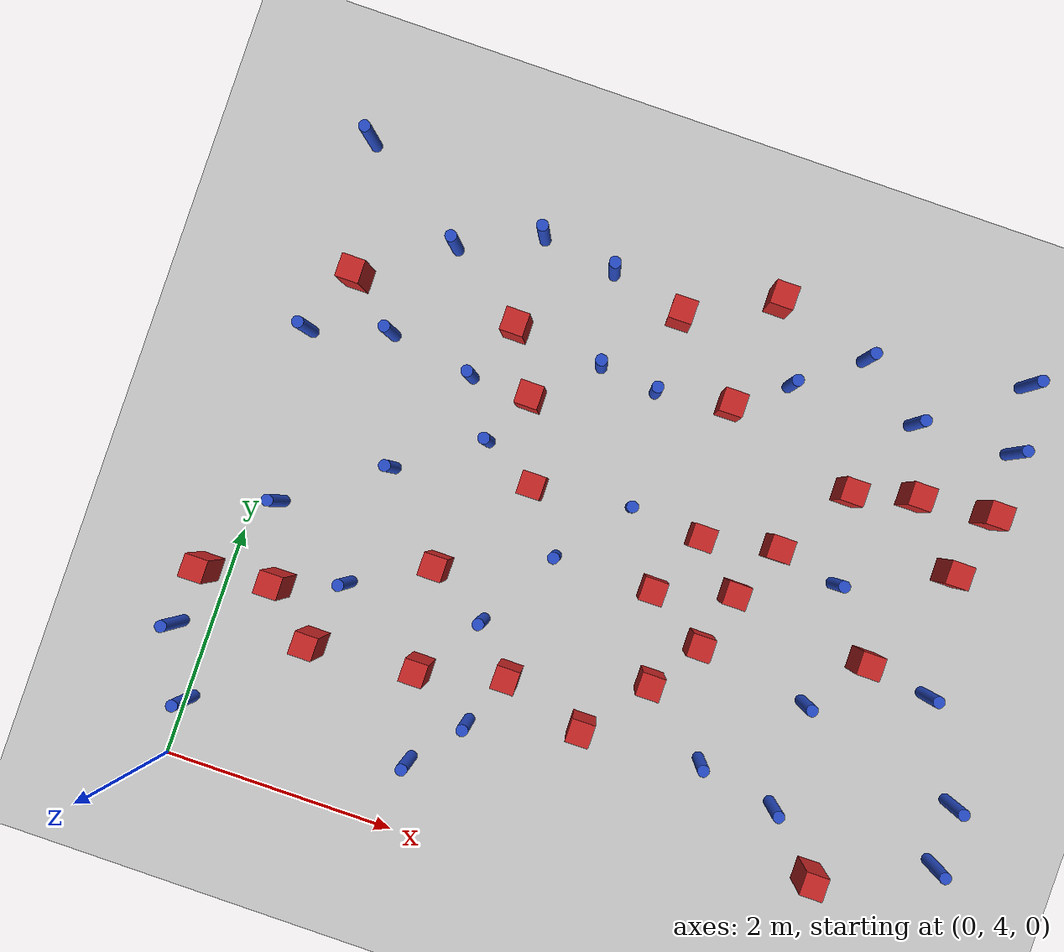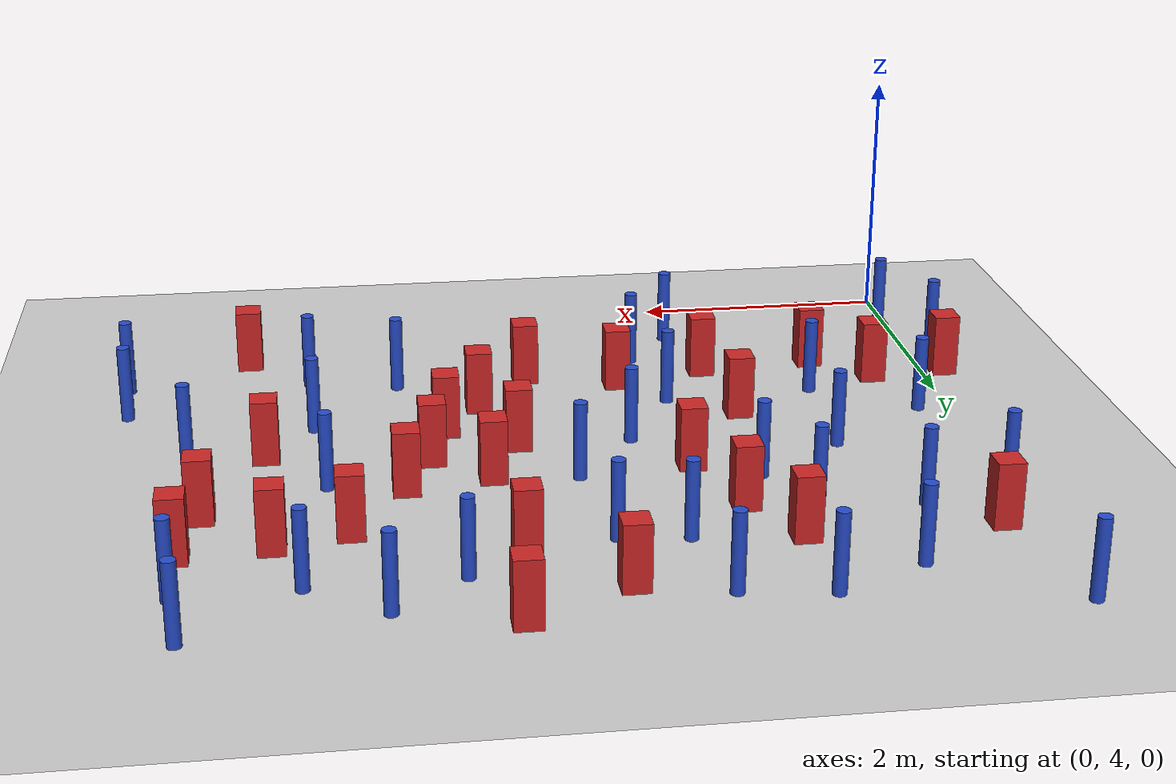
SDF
<sdf version="1.6">
 <world name="default">
  <model name="ground_plane">
   <static>1</static>
   <link name="link">
    <collision name="collision">
     <geometry><plane><normal>0 0 1</normal><size>100 100</size></plane></geometry>
     <surface><friction><ode><mu>100</mu><mu2>50</mu2></ode></friction></surface>
    </collision>
    <visual name="visual">
     <cast_shadows>0</cast_shadows>
     <geometry><plane><normal>0 0 1</normal><size>100 100</size></plane></geometry>
     <material>
      <ambient>1.0 1.0 1.0 1.0</ambient>
      <diffuse>0.8 0.8 0.8 1.0</diffuse>
      <specular>0.01 0.01 0.01 1.000000</specular>
     </material>
    </visual>
   </link>
  </model>
  <model name="pole_obstacle1">
   <static>true</static>
   <pose>0.675258430934 7.98045626126 2.88873142074e-08 -9.90536690208e-09 4.6021994898e-07 -1.20965994966e-07</pose>
   <link name="link">
    <pose>0 0 0.3 0 -0 0</pose>
    <inertial>
     <mass>1</mass>
     <inertia><ixx>0.145833</ixx><ixy>0</ixy><ixz>0</ixz><iyy>0.145833</iyy><iyz>0</iyz><izz>0.125</izz></inertia>
    </inertial>
    <collision name="collision">
     <geometry><cylinder><radius>0.05</radius><length>.6</length></cylinder></geometry>
    </collision>
    <visual name="visual">
     <geometry><cylinder><radius>0.05</radius><length>.6</length></cylinder></geometry>
     <material>
      <script><name>Gazebo/Blue</name><uri>file://media/materials/scripts/gazebo.material</uri></script>
     </material>
    </visual>
   </link>
  </model>
  <model name="pole_obstacle2">
   <static>true</static>
   <pose>6.3781744433 5.77590479522 2.88873142074e-08 -9.90536690842e-09 4.60219948965e-07 -1.20965994976e-07</pose>
   <link name="link">
    <pose>0 0 0.3 0 -0 0</pose>
    <inertial>
     <mass>1</mass>
     <inertia><ixx>0.145833</ixx><ixy>0</ixy><ixz>0</ixz><iyy>0.145833</iyy><iyz>0</iyz><izz>0.125</izz></inertia>
    </inertial>
    <collision name="collision">
     <geometry><cylinder><radius>0.05</radius><length>.6</length></cylinder></geometry>
    </collision>
    <visual name="visual">
     <geometry><cylinder><radius>0.05</radius><length>.6</length></cylinder></geometry>
     <material>
      <script><name>Gazebo/Blue</name><uri>file://media/materials/scripts/gazebo.material</uri></script>
     </material>
    </visual>
   </link>
  </model>
  <model name="pole_obstacle14">
   <static>true</static>
   <pose>4.49745571173 9.06635080468 2.88873142074e-08 -9.9053668967e-09 4.60219948993e-07 -1.20965994957e-07</pose>
   <link name="link">
    <pose>0 0 0.3 0 -0 0</pose>
    <inertial>
     <mass>1</mass>
     <inertia><ixx>0.145833</ixx><ixy>0</ixy><ixz>0</ixz><iyy>0.145833</iyy><iyz>0</iyz><izz>0.125</izz></inertia>
    </inertial>
    <collision name="collision">
     <geometry><cylinder><radius>0.05</radius><length>.6</length></cylinder></geometry>
    </collision>
    <visual name="visual">
     <geometry><cylinder><radius>0.05</radius><length>.6</length></cylinder></geometry>
     <material>
      <script><name>Gazebo/Blue</name><uri>file://media/materials/scripts/gazebo.material</uri></script>
     </material>
    </visual>
   </link>
  </model>
  <model name="pole_obstacle22">
   <static>true</static>
   <pose>1.00472966227 5.88352059625 2.88873142074e-08 -9.90536689905e-09 4.60219948988e-07 -1.20965994961e-07</pose>
   <link name="link">
    <pose>0 0 0.3 0 -0 0</pose>
    <inertial>
     <mass>1</mass>
     <inertia><ixx>0.145833</ixx><ixy>0</ixy><ixz>0</ixz><iyy>0.145833</iyy><iyz>0</iyz><izz>0.125</izz></inertia>
    </inertial>
    <collision name="collision">
     <geometry><cylinder><radius>0.05</radius><length>.6</length></cylinder></geometry>
    </collision>
    <visual name="visual">
     <geometry><cylinder><radius>0.05</radius><length>.6</length></cylinder></geometry>
     <material>
      <script><name>Gazebo/Blue</name><uri>file://media/materials/scripts/gazebo.material</uri></script>
     </material>
    </visual>
   </link>
  </model>
  <model name="square_post_obstacle21">
   <static>true</static>
   <pose>5.90276596362 8.16624693689 8.22691968438e-08 7.22125133819e-06 -7.54495500217e-07 2.29674213826e-05</pose>
   <link name="link">
    <pose>0 0 0.25 0 -0 0</pose>
    <inertial>
     <mass>100</mass>
     <inertia>
      <ixx>0.166667</ixx>
      <ixy>0</ixy>
      <ixz>0</ixz>
      <iyy>0.166667</iyy>
      <iyz>0</iyz>
      <izz>0.166667</izz>
     </inertia>
    </inertial>
    <collision name="collision"><geometry><box><size>.2 .2 .5</size></box></geometry></collision>
    <visual name="visual">
     <geometry><box><size>.2 .2 .5</size></box></geometry>
     <material>
      <script><name>Gazebo/Red</name><uri>file://media/materials/scripts/gazebo.material</uri></script>
     </material>
    </visual>
   </link>
  </model>
  <model name="pole_obstacle35">
   <static>true</static>
   <pose>4.86786611903 7.20192818853 2.88873142074e-08 -9.90536690842e-09 4.60219948965e-07 -1.20965994976e-07</pose>
   <link name="link">
    <pose>0 0 0.3 0 -0 0</pose>
    <inertial>
     <mass>1</mass>
     <inertia><ixx>0.145833</ixx><ixy>0</ixy><ixz>0</ixz><iyy>0.145833</iyy><iyz>0</iyz><izz>0.125</izz></inertia>
    </inertial>
    <collision name="collision">
     <geometry><cylinder><radius>0.05</radius><length>.6</length></cylinder></geometry>
    </collision>
    <visual name="visual">
     <geometry><cylinder><radius>0.05</radius><length>.6</length></cylinder></geometry>
     <material>
      <script><name>Gazebo/Blue</name><uri>file://media/materials/scripts/gazebo.material</uri></script>
     </material>
    </visual>
   </link>
  </model>
  <model name="square_post_obstacle30">
   <static>true</static>
   <pose>1.95060733607 7.8471107572 8.22691968438e-08 7.2212513382e-06 -7.54495500217e-07 2.29674213826e-05</pose>
   <link name="link">
    <pose>0 0 0.25 0 -0 0</pose>
    <inertial>
     <mass>100</mass>
     <inertia>
      <ixx>0.166667</ixx>
      <ixy>0</ixy>
      <ixz>0</ixz>
      <iyy>0.166667</iyy>
      <iyz>0</iyz>
      <izz>0.166667</izz>
     </inertia>
    </inertial>
    <collision name="collision"><geometry><box><size>.2 .2 .5</size></box></geometry></collision>
    <visual name="visual">
     <geometry><box><size>.2 .2 .5</size></box></geometry>
     <material>
      <script><name>Gazebo/Red</name><uri>file://media/materials/scripts/gazebo.material</uri></script>
     </material>
    </visual>
   </link>
  </model>
  <model name="pole_obstacle36">
   <static>true</static>
   <pose>1.61754868161 9.16432957372 2.88873142074e-08 -9.90536690474e-09 4.60219948974e-07 -1.2096599497e-07</pose>
   <link name="link">
    <pose>0 0 0.3 0 -0 0</pose>
    <inertial>
     <mass>1</mass>
     <inertia><ixx>0.145833</ixx><ixy>0</ixy><ixz>0</ixz><iyy>0.145833</iyy><iyz>0</iyz><izz>0.125</izz></inertia>
    </inertial>
    <collision name="collision">
     <geometry><cylinder><radius>0.05</radius><length>.6</length></cylinder></geometry>
    </collision>
    <visual name="visual">
     <geometry><cylinder><radius>0.05</radius><length>.6</length></cylinder></geometry>
     <material>
      <script><name>Gazebo/Blue</name><uri>file://media/materials/scripts/gazebo.material</uri></script>
     </material>
    </visual>
   </link>
  </model>
  <model name="pole_obstacle39">
   <static>true</static>
   <pose>3.97261036472 8.65589827745 2.88873142074e-08 -9.90536692324e-09 4.6021994893e-07 -1.20965994987e-07</pose>
   <link name="link">
    <pose>0 0 0.3 0 -0 0</pose>
    <inertial>
     <mass>1</mass>
     <inertia><ixx>0.145833</ixx><ixy>0</ixy><ixz>0</ixz><iyy>0.145833</iyy><iyz>0</iyz><izz>0.125</izz></inertia>
    </inertial>
    <collision name="collision">
     <geometry><cylinder><radius>0.05</radius><length>.6</length></cylinder></geometry>
    </collision>
    <visual name="visual">
     <geometry><cylinder><radius>0.05</radius><length>.6</length></cylinder></geometry>
     <material>
      <script><name>Gazebo/Blue</name><uri>file://media/materials/scripts/gazebo.material</uri></script>
     </material>
    </visual>
   </link>
  </model>
  <model name="pole_obstacle40">
   <static>true</static>
   <pose>2.33162260529 5.10362424694 2.88873142074e-08 -9.90536689859e-09 4.60219948989e-07 -1.20965994961e-07</pose>
   <link name="link">
    <pose>0 0 0.3 0 -0 0</pose>
    <inertial>
     <mass>1</mass>
     <inertia><ixx>0.145833</ixx><ixy>0</ixy><ixz>0</ixz><iyy>0.145833</iyy><iyz>0</iyz><izz>0.125</izz></inertia>
    </inertial>
    <collision name="collision">
     <geometry><cylinder><radius>0.05</radius><length>.6</length></cylinder></geometry>
    </collision>
    <visual name="visual">
     <geometry><cylinder><radius>0.05</radius><length>.6</length></cylinder></geometry>
     <material>
      <script><name>Gazebo/Blue</name><uri>file://media/materials/scripts/gazebo.material</uri></script>
     </material>
    </visual>
   </link>
  </model>
  <model name="pole_obstacle41">
   <static>true</static>
   <pose>0.0548721989412 4.52824444589 2.88873142074e-08 -9.90536689796e-09 4.6021994899e-07 -1.20965994961e-07</pose>
   <link name="link">
    <pose>0 0 0.3 0 -0 0</pose>
    <inertial>
     <mass>1</mass>
     <inertia><ixx>0.145833</ixx><ixy>0</ixy><ixz>0</ixz><iyy>0.145833</iyy><iyz>0</iyz><izz>0.125</izz></inertia>
    </inertial>
    <collision name="collision">
     <geometry><cylinder><radius>0.05</radius><length>.6</length></cylinder></geometry>
    </collision>
    <visual name="visual">
     <geometry><cylinder><radius>0.05</radius><length>.6</length></cylinder></geometry>
     <material>
      <script><name>Gazebo/Blue</name><uri>file://media/materials/scripts/gazebo.material</uri></script>
     </material>
    </visual>
   </link>
  </model>
  <model name="square_post_obstacle32">
   <static>true</static>
   <pose>1.66562303262 6.26044313688 8.22691968438e-08 7.2212513382e-06 -7.54495500217e-07 2.29674213826e-05</pose>
   <link name="link">
    <pose>0 0 0.25 0 -0 0</pose>
    <inertial>
     <mass>100</mass>
     <inertia>
      <ixx>0.166667</ixx>
      <ixy>0</ixy>
      <ixz>0</ixz>
      <iyy>0.166667</iyy>
      <iyz>0</iyz>
      <izz>0.166667</izz>
     </inertia>
    </inertial>
    <collision name="collision"><geometry><box><size>.2 .2 .5</size></box></geometry></collision>
    <visual name="visual">
     <geometry><box><size>.2 .2 .5</size></box></geometry>
     <material>
      <script><name>Gazebo/Red</name><uri>file://media/materials/scripts/gazebo.material</uri></script>
     </material>
    </visual>
   </link>
  </model>
  <model name="square_post_obstacle35">
   <static>true</static>
   <pose>5.45315975968 4.81456576775 8.22691968438e-08 7.2212513382e-06 -7.54495500217e-07 2.29674213826e-05</pose>
   <link name="link">
    <pose>0 0 0.25 0 -0 0</pose>
    <inertial>
     <mass>100</mass>
     <inertia>
      <ixx>0.166667</ixx>
      <ixy>0</ixy>
      <ixz>0</ixz>
      <iyy>0.166667</iyy>
      <iyz>0</iyz>
      <izz>0.166667</izz>
     </inertia>
    </inertial>
    <collision name="collision"><geometry><box><size>.2 .2 .5</size></box></geometry></collision>
    <visual name="visual">
     <geometry><box><size>.2 .2 .5</size></box></geometry>
     <material>
      <script><name>Gazebo/Red</name><uri>file://media/materials/scripts/gazebo.material</uri></script>
     </material>
    </visual>
   </link>
  </model>
  <model name="pole_obstacle48">
   <static>true</static>
   <pose>2.26872943974 9.07308084585 2.88873142074e-08 -9.90536692318e-09 4.6021994893e-07 -1.20965994988e-07</pose>
   <link name="link">
    <pose>0 0 0.3 0 -0 0</pose>
    <inertial>
     <mass>1</mass>
     <inertia><ixx>0.145833</ixx><ixy>0</ixy><ixz>0</ixz><iyy>0.145833</iyy><iyz>0</iyz><izz>0.125</izz></inertia>
    </inertial>
    <collision name="collision">
     <geometry><cylinder><radius>0.05</radius><length>.6</length></cylinder></geometry>
    </collision>
    <visual name="visual">
     <geometry><cylinder><radius>0.05</radius><length>.6</length></cylinder></geometry>
     <material>
      <script><name>Gazebo/Blue</name><uri>file://media/materials/scripts/gazebo.material</uri></script>
     </material>
    </visual>
   </link>
  </model>
  <model name="pole_obstacle49">
   <static>true</static>
   <pose>5.84050831255 9.29224790626 2.88873142074e-08 -9.9053668967e-09 4.60219948993e-07 -1.20965994957e-07</pose>
   <link name="link">
    <pose>0 0 0.3 0 -0 0</pose>
    <inertial>
     <mass>1</mass>
     <inertia><ixx>0.145833</ixx><ixy>0</ixy><ixz>0</ixz><iyy>0.145833</iyy><iyz>0</iyz><izz>0.125</izz></inertia>
    </inertial>
    <collision name="collision">
     <geometry><cylinder><radius>0.05</radius><length>.6</length></cylinder></geometry>
    </collision>
    <visual name="visual">
     <geometry><cylinder><radius>0.05</radius><length>.6</length></cylinder></geometry>
     <material>
      <script><name>Gazebo/Blue</name><uri>file://media/materials/scripts/gazebo.material</uri></script>
     </material>
    </visual>
   </link>
  </model>
  <model name="pole_obstacle54">
   <static>true</static>
   <pose>0.241742720108 6.3462624011 2.88873142074e-08 -9.90536689491e-09 4.60219948997e-07 -1.20965994955e-07</pose>
   <link name="link">
    <pose>0 0 0.3 0 -0 0</pose>
    <inertial>
     <mass>1</mass>
     <inertia><ixx>0.145833</ixx><ixy>0</ixy><ixz>0</ixz><iyy>0.145833</iyy><iyz>0</iyz><izz>0.125</izz></inertia>
    </inertial>
    <collision name="collision">
     <geometry><cylinder><radius>0.05</radius><length>.6</length></cylinder></geometry>
    </collision>
    <visual name="visual">
     <geometry><cylinder><radius>0.05</radius><length>.6</length></cylinder></geometry>
     <material>
      <script><name>Gazebo/Blue</name><uri>file://media/materials/scripts/gazebo.material</uri></script>
     </material>
    </visual>
   </link>
  </model>
  <model name="pole_obstacle60">
   <static>true</static>
   <pose>2.42109691815 8.29334462986 2.88873142074e-08 -9.90536692318e-09 4.6021994893e-07 -1.20965994988e-07</pose>
   <link name="link">
    <pose>0 0 0.3 0 -0 0</pose>
    <inertial>
     <mass>1</mass>
     <inertia><ixx>0.145833</ixx><ixy>0</ixy><ixz>0</ixz><iyy>0.145833</iyy><iyz>0</iyz><izz>0.125</izz></inertia>
    </inertial>
    <collision name="collision">
     <geometry><cylinder><radius>0.05</radius><length>.6</length></cylinder></geometry>
    </collision>
    <visual name="visual">
     <geometry><cylinder><radius>0.05</radius><length>.6</length></cylinder></geometry>
     <material>
      <script><name>Gazebo/Blue</name><uri>file://media/materials/scripts/gazebo.material</uri></script>
     </material>
    </visual>
   </link>
  </model>
  <model name="pole_obstacle64">
   <static>true</static>
   <pose>-0.237626377473 5.10594518628 2.88873142074e-08 -9.90536689703e-09 4.60219948992e-07 -1.20965994959e-07</pose>
   <link name="link">
    <pose>0 0 0.3 0 -0 0</pose>
    <inertial>
     <mass>1</mass>
     <inertia><ixx>0.145833</ixx><ixy>0</ixy><ixz>0</ixz><iyy>0.145833</iyy><iyz>0</iyz><izz>0.125</izz></inertia>
    </inertial>
    <collision name="collision">
     <geometry><cylinder><radius>0.05</radius><length>.6</length></cylinder></geometry>
    </collision>
    <visual name="visual">
     <geometry><cylinder><radius>0.05</radius><length>.6</length></cylinder></geometry>
     <material>
      <script><name>Gazebo/Blue</name><uri>file://media/materials/scripts/gazebo.material</uri></script>
     </material>
    </visual>
   </link>
  </model>
  <model name="square_post_obstacle55">
   <static>true</static>
   <pose>2.91324055113 8.91293718976 8.22691968438e-08 7.22125133819e-06 -7.54495500217e-07 2.29674213826e-05</pose>
   <link name="link">
    <pose>0 0 0.25 0 -0 0</pose>
    <inertial>
     <mass>100</mass>
     <inertia>
      <ixx>0.166667</ixx>
      <ixy>0</ixy>
      <ixz>0</ixz>
      <iyy>0.166667</iyy>
      <iyz>0</iyz>
      <izz>0.166667</izz>
     </inertia>
    </inertial>
    <collision name="collision"><geometry><box><size>.2 .2 .5</size></box></geometry></collision>
    <visual name="visual">
     <geometry><box><size>.2 .2 .5</size></box></geometry>
     <material>
      <script><name>Gazebo/Red</name><uri>file://media/materials/scripts/gazebo.material</uri></script>
     </material>
    </visual>
   </link>
  </model>
  <model name="square_post_obstacle59">
   <static>true</static>
   <pose>3.5505788134 8.33010943817 8.22691968438e-08 7.22125133819e-06 -7.54495500217e-07 2.29674213826e-05</pose>
   <link name="link">
    <pose>0 0 0.25 0 -0 0</pose>
    <inertial>
     <mass>100</mass>
     <inertia>
      <ixx>0.166667</ixx>
      <ixy>0</ixy>
      <ixz>0</ixz>
      <iyy>0.166667</iyy>
      <iyz>0</iyz>
      <izz>0.166667</izz>
     </inertia>
    </inertial>
    <collision name="collision"><geometry><box><size>.2 .2 .5</size></box></geometry></collision>
    <visual name="visual">
     <geometry><box><size>.2 .2 .5</size></box></geometry>
     <material>
      <script><name>Gazebo/Red</name><uri>file://media/materials/scripts/gazebo.material</uri></script>
     </material>
    </visual>
   </link>
  </model>
  <model name="square_post_obstacle60">
   <static>true</static>
   <pose>2.20803721954 7.15400324248 8.22691968438e-08 7.2212513382e-06 -7.54495500217e-07 2.29674213826e-05</pose>
   <link name="link">
    <pose>0 0 0.25 0 -0 0</pose>
    <inertial>
     <mass>100</mass>
     <inertia>
      <ixx>0.166667</ixx>
      <ixy>0</ixy>
      <ixz>0</ixz>
      <iyy>0.166667</iyy>
      <iyz>0</iyz>
      <izz>0.166667</izz>
     </inertia>
    </inertial>
    <collision name="collision"><geometry><box><size>.2 .2 .5</size></box></geometry></collision>
    <visual name="visual">
     <geometry><box><size>.2 .2 .5</size></box></geometry>
     <material>
      <script><name>Gazebo/Red</name><uri>file://media/materials/scripts/gazebo.material</uri></script>
     </material>
    </visual>
   </link>
  </model>
  <model name="square_post_obstacle71">
   <static>true</static>
   <pose>4.71896731993 7.96380385074 8.22691968438e-08 7.22125133819e-06 -7.54495500217e-07 2.29674213826e-05</pose>
   <link name="link">
    <pose>0 0 0.25 0 -0 0</pose>
    <inertial>
     <mass>100</mass>
     <inertia>
      <ixx>0.166667</ixx>
      <ixy>0</ixy>
      <ixz>0</ixz>
      <iyy>0.166667</iyy>
      <iyz>0</iyz>
      <izz>0.166667</izz>
     </inertia>
    </inertial>
    <collision name="collision"><geometry><box><size>.2 .2 .5</size></box></geometry></collision>
    <visual name="visual">
     <geometry><box><size>.2 .2 .5</size></box></geometry>
     <material>
      <script><name>Gazebo/Red</name><uri>file://media/materials/scripts/gazebo.material</uri></script>
     </material>
    </visual>
   </link>
  </model>
  <model name="pole_obstacle84">
   <static>true</static>
   <pose>1.04494433747 6.91920983482 2.88873142074e-08 -9.90536689905e-09 4.60219948988e-07 -1.20965994961e-07</pose>
   <link name="link">
    <pose>0 0 0.3 0 -0 0</pose>
    <inertial>
     <mass>1</mass>
     <inertia><ixx>0.145833</ixx><ixy>0</ixy><ixz>0</ixz><iyy>0.145833</iyy><iyz>0</iyz><izz>0.125</izz></inertia>
    </inertial>
    <collision name="collision">
     <geometry><cylinder><radius>0.05</radius><length>.6</length></cylinder></geometry>
    </collision>
    <visual name="visual">
     <geometry><cylinder><radius>0.05</radius><length>.6</length></cylinder></geometry>
     <material>
      <script><name>Gazebo/Blue</name><uri>file://media/materials/scripts/gazebo.material</uri></script>
     </material>
    </visual>
   </link>
  </model>
  <model name="pole_obstacle87">
   <static>true</static>
   <pose>5.89129792472 6.56987014284 2.88873142074e-08 -9.90536690842e-09 4.60219948965e-07 -1.20965994976e-07</pose>
   <link name="link">
    <pose>0 0 0.3 0 -0 0</pose>
    <inertial>
     <mass>1</mass>
     <inertia><ixx>0.145833</ixx><ixy>0</ixy><ixz>0</ixz><iyy>0.145833</iyy><iyz>0</iyz><izz>0.125</izz></inertia>
    </inertial>
    <collision name="collision">
     <geometry><cylinder><radius>0.05</radius><length>.6</length></cylinder></geometry>
    </collision>
    <visual name="visual">
     <geometry><cylinder><radius>0.05</radius><length>.6</length></cylinder></geometry>
     <material>
      <script><name>Gazebo/Blue</name><uri>file://media/materials/scripts/gazebo.material</uri></script>
     </material>
    </visual>
   </link>
  </model>
  <model name="square_post_obstacle84">
   <static>true</static>
   <pose>4.08916466946 6.84941141794 8.22691968438e-08 7.2212513382e-06 -7.54495500217e-07 2.29674213826e-05</pose>
   <link name="link">
    <pose>0 0 0.25 0 -0 0</pose>
    <inertial>
     <mass>100</mass>
     <inertia>
      <ixx>0.166667</ixx>
      <ixy>0</ixy>
      <ixz>0</ixz>
      <iyy>0.166667</iyy>
      <iyz>0</iyz>
      <izz>0.166667</izz>
     </inertia>
    </inertial>
    <collision name="collision"><geometry><box><size>.2 .2 .5</size></box></geometry></collision>
    <visual name="visual">
     <geometry><box><size>.2 .2 .5</size></box></geometry>
     <material>
      <script><name>Gazebo/Red</name><uri>file://media/materials/scripts/gazebo.material</uri></script>
     </material>
    </visual>
   </link>
  </model>
  <model name="pole_obstacle91">
   <static>true</static>
   <pose>0.946216989264 8.84394046631 2.88873142074e-08 -9.90536690779e-09 4.60219948967e-07 -1.20965994975e-07</pose>
   <link name="link">
    <pose>0 0 0.3 0 -0 0</pose>
    <inertial>
     <mass>1</mass>
     <inertia><ixx>0.145833</ixx><ixy>0</ixy><ixz>0</ixz><iyy>0.145833</iyy><iyz>0</iyz><izz>0.125</izz></inertia>
    </inertial>
    <collision name="collision">
     <geometry><cylinder><radius>0.05</radius><length>.6</length></cylinder></geometry>
    </collision>
    <visual name="visual">
     <geometry><cylinder><radius>0.05</radius><length>.6</length></cylinder></geometry>
     <material>
      <script><name>Gazebo/Blue</name><uri>file://media/materials/scripts/gazebo.material</uri></script>
     </material>
    </visual>
   </link>
  </model>
  <model name="square_post_obstacle88">
   <static>true</static>
   <pose>0.240256242812 8.34523621806 8.22691968438e-08 7.22125133819e-06 -7.54495500217e-07 2.29674213826e-05</pose>
   <link name="link">
    <pose>0 0 0.25 0 -0 0</pose>
    <inertial>
     <mass>100</mass>
     <inertia>
      <ixx>0.166667</ixx>
      <ixy>0</ixy>
      <ixz>0</ixz>
      <iyy>0.166667</iyy>
      <iyz>0</iyz>
      <izz>0.166667</izz>
     </inertia>
    </inertial>
    <collision name="collision"><geometry><box><size>.2 .2 .5</size></box></geometry></collision>
    <visual name="visual">
     <geometry><box><size>.2 .2 .5</size></box></geometry>
     <material>
      <script><name>Gazebo/Red</name><uri>file://media/materials/scripts/gazebo.material</uri></script>
     </material>
    </visual>
   </link>
  </model>
  <model name="pole_obstacle96">
   <static>true</static>
   <pose>0.000752274173946 9.45489385386 2.88873142074e-08 -9.90536690698e-09 4.60219948969e-07 -1.20965994974e-07</pose>
   <link name="link">
    <pose>0 0 0.3 0 -0 0</pose>
    <inertial>
     <mass>1</mass>
     <inertia><ixx>0.145833</ixx><ixy>0</ixy><ixz>0</ixz><iyy>0.145833</iyy><iyz>0</iyz><izz>0.125</izz></inertia>
    </inertial>
    <collision name="collision">
     <geometry><cylinder><radius>0.05</radius><length>.6</length></cylinder></geometry>
    </collision>
    <visual name="visual">
     <geometry><cylinder><radius>0.05</radius><length>.6</length></cylinder></geometry>
     <material>
      <script><name>Gazebo/Blue</name><uri>file://media/materials/scripts/gazebo.material</uri></script>
     </material>
    </visual>
   </link>
  </model>
  <model name="square_post_obstacle89">
   <static>true</static>
   <pose>3.43317992388 6.65973969693 8.22691968438e-08 7.2212513382e-06 -7.54495500217e-07 2.29674213826e-05</pose>
   <link name="link">
    <pose>0 0 0.25 0 -0 0</pose>
    <inertial>
     <mass>100</mass>
     <inertia>
      <ixx>0.166667</ixx>
      <ixy>0</ixy>
      <ixz>0</ixz>
      <iyy>0.166667</iyy>
      <iyz>0</iyz>
      <izz>0.166667</izz>
     </inertia>
    </inertial>
    <collision name="collision"><geometry><box><size>.2 .2 .5</size></box></geometry></collision>
    <visual name="visual">
     <geometry><box><size>.2 .2 .5</size></box></geometry>
     <material>
      <script><name>Gazebo/Red</name><uri>file://media/materials/scripts/gazebo.material</uri></script>
     </material>
    </visual>
   </link>
  </model>
  <model name="square_post_obstacle100">
   <static>true</static>
   <pose>4.30543132908 7.32407578975 8.22691968438e-08 7.2212513382e-06 -7.54495500217e-07 2.29674213826e-05</pose>
   <link name="link">
    <pose>0 0 0.25 0 -0 0</pose>
    <inertial>
     <mass>100</mass>
     <inertia>
      <ixx>0.166667</ixx>
      <ixy>0</ixy>
      <ixz>0</ixz>
      <iyy>0.166667</iyy>
      <iyz>0</iyz>
      <izz>0.166667</izz>
     </inertia>
    </inertial>
    <collision name="collision"><geometry><box><size>.2 .2 .5</size></box></geometry></collision>
    <visual name="visual">
     <geometry><box><size>.2 .2 .5</size></box></geometry>
     <material>
      <script><name>Gazebo/Red</name><uri>file://media/materials/scripts/gazebo.material</uri></script>
     </material>
    </visual>
   </link>
  </model>
  <model name="square_post_obstacle102">
   <static>true</static>
   <pose>1.64674141202 8.37029351003 8.22691968438e-08 7.22125133819e-06 -7.54495500217e-07 2.29674213826e-05</pose>
   <link name="link">
    <pose>0 0 0.25 0 -0 0</pose>
    <inertial>
     <mass>100</mass>
     <inertia>
      <ixx>0.166667</ixx>
      <ixy>0</ixy>
      <ixz>0</ixz>
      <iyy>0.166667</iyy>
      <iyz>0</iyz>
      <izz>0.166667</izz>
     </inertia>
    </inertial>
    <collision name="collision"><geometry><box><size>.2 .2 .5</size></box></geometry></collision>
    <visual name="visual">
     <geometry><box><size>.2 .2 .5</size></box></geometry>
     <material>
      <script><name>Gazebo/Red</name><uri>file://media/materials/scripts/gazebo.material</uri></script>
     </material>
    </visual>
   </link>
  </model>
  <model name="pole_obstacle112">
   <static>true</static>
   <pose>1.72887843947 7.38879575173 2.88873142074e-08 -9.90536689852e-09 4.60219948989e-07 -1.2096599496e-07</pose>
   <link name="link">
    <pose>0 0 0.3 0 -0 0</pose>
    <inertial>
     <mass>1</mass>
     <inertia><ixx>0.145833</ixx><ixy>0</ixy><ixz>0</ixz><iyy>0.145833</iyy><iyz>0</iyz><izz>0.125</izz></inertia>
    </inertial>
    <collision name="collision">
     <geometry><cylinder><radius>0.05</radius><length>.6</length></cylinder></geometry>
    </collision>
    <visual name="visual">
     <geometry><cylinder><radius>0.05</radius><length>.6</length></cylinder></geometry>
     <material>
      <script><name>Gazebo/Blue</name><uri>file://media/materials/scripts/gazebo.material</uri></script>
     </material>
    </visual>
   </link>
  </model>
  <model name="square_post_obstacle122">
   <static>true</static>
   <pose>3.67304655795 7.20309830206 8.22691968438e-08 7.2212513382e-06 -7.54495500217e-07 2.29674213826e-05</pose>
   <link name="link">
    <pose>0 0 0.25 0 -0 0</pose>
    <inertial>
     <mass>100</mass>
     <inertia>
      <ixx>0.166667</ixx>
      <ixy>0</ixy>
      <ixz>0</ixz>
      <iyy>0.166667</iyy>
      <iyz>0</iyz>
      <izz>0.166667</izz>
     </inertia>
    </inertial>
    <collision name="collision"><geometry><box><size>.2 .2 .5</size></box></geometry></collision>
    <visual name="visual">
     <geometry><box><size>.2 .2 .5</size></box></geometry>
     <material>
      <script><name>Gazebo/Red</name><uri>file://media/materials/scripts/gazebo.material</uri></script>
     </material>
    </visual>
   </link>
  </model>
  <model name="square_post_obstacle130">
   <static>true</static>
   <pose>5.7500478217 7.5977895564 8.22691968438e-08 7.2212513382e-06 -7.54495500217e-07 2.29674213826e-05</pose>
   <link name="link">
    <pose>0 0 0.25 0 -0 0</pose>
    <inertial>
     <mass>100</mass>
     <inertia>
      <ixx>0.166667</ixx>
      <ixy>0</ixy>
      <ixz>0</ixz>
      <iyy>0.166667</iyy>
      <iyz>0</iyz>
      <izz>0.166667</izz>
     </inertia>
    </inertial>
    <collision name="collision"><geometry><box><size>.2 .2 .5</size></box></geometry></collision>
    <visual name="visual">
     <geometry><box><size>.2 .2 .5</size></box></geometry>
     <material>
      <script><name>Gazebo/Red</name><uri>file://media/materials/scripts/gazebo.material</uri></script>
     </material>
    </visual>
   </link>
  </model>
  <model name="square_post_obstacle132">
   <static>true</static>
   <pose>2.52473569385 5.58268176665 8.22691968438e-08 7.2212513382e-06 -7.54495500217e-07 2.29674213826e-05</pose>
   <link name="link">
    <pose>0 0 0.25 0 -0 0</pose>
    <inertial>
     <mass>100</mass>
     <inertia>
      <ixx>0.166667</ixx>
      <ixy>0</ixy>
      <ixz>0</ixz>
      <iyy>0.166667</iyy>
      <iyz>0</iyz>
      <izz>0.166667</izz>
     </inertia>
    </inertial>
    <collision name="collision"><geometry><box><size>.2 .2 .5</size></box></geometry></collision>
    <visual name="visual">
     <geometry><box><size>.2 .2 .5</size></box></geometry>
     <material>
      <script><name>Gazebo/Red</name><uri>file://media/materials/scripts/gazebo.material</uri></script>
     </material>
    </visual>
   </link>
  </model>
  <model name="pole_obstacle138">
   <static>true</static>
   <pose>4.94736905905 6.17282300272 2.88873142074e-08 -9.90536690842e-09 4.60219948965e-07 -1.20965994976e-07</pose>
   <link name="link">
    <pose>0 0 0.3 0 -0 0</pose>
    <inertial>
     <mass>1</mass>
     <inertia><ixx>0.145833</ixx><ixy>0</ixy><ixz>0</ixz><iyy>0.145833</iyy><iyz>0</iyz><izz>0.125</izz></inertia>
    </inertial>
    <collision name="collision">
     <geometry><cylinder><radius>0.05</radius><length>.6</length></cylinder></geometry>
    </collision>
    <visual name="visual">
     <geometry><cylinder><radius>0.05</radius><length>.6</length></cylinder></geometry>
     <material>
      <script><name>Gazebo/Blue</name><uri>file://media/materials/scripts/gazebo.material</uri></script>
     </material>
    </visual>
   </link>
  </model>
  <model name="square_post_obstacle137">
   <static>true</static>
   <pose>1.79973492885 5.39472892452 8.22691968438e-08 7.2212513382e-06 -7.54495500217e-07 2.29674213826e-05</pose>
   <link name="link">
    <pose>0 0 0.25 0 -0 0</pose>
    <inertial>
     <mass>100</mass>
     <inertia>
      <ixx>0.166667</ixx>
      <ixy>0</ixy>
      <ixz>0</ixz>
      <iyy>0.166667</iyy>
      <iyz>0</iyz>
      <izz>0.166667</izz>
     </inertia>
    </inertial>
    <collision name="collision"><geometry><box><size>.2 .2 .5</size></box></geometry></collision>
    <visual name="visual">
     <geometry><box><size>.2 .2 .5</size></box></geometry>
     <material>
      <script><name>Gazebo/Red</name><uri>file://media/materials/scripts/gazebo.material</uri></script>
     </material>
    </visual>
   </link>
  </model>
  <model name="pole_obstacle141">
   <static>true</static>
   <pose>5.91129957324 8.71800576205 2.88873142074e-08 -9.9053668967e-09 4.60219948993e-07 -1.20965994957e-07</pose>
   <link name="link">
    <pose>0 0 0.3 0 -0 0</pose>
    <inertial>
     <mass>1</mass>
     <inertia><ixx>0.145833</ixx><ixy>0</ixy><ixz>0</ixz><iyy>0.145833</iyy><iyz>0</iyz><izz>0.125</izz></inertia>
    </inertial>
    <collision name="collision">
     <geometry><cylinder><radius>0.05</radius><length>.6</length></cylinder></geometry>
    </collision>
    <visual name="visual">
     <geometry><cylinder><radius>0.05</radius><length>.6</length></cylinder></geometry>
     <material>
      <script><name>Gazebo/Blue</name><uri>file://media/materials/scripts/gazebo.material</uri></script>
     </material>
    </visual>
   </link>
  </model>
  <model name="square_post_obstacle138">
   <static>true</static>
   <pose>3.95255679754 6.35112730769 8.22691968438e-08 7.2212513382e-06 -7.54495500217e-07 2.29674213826e-05</pose>
   <link name="link">
    <pose>0 0 0.25 0 -0 0</pose>
    <inertial>
     <mass>100</mass>
     <inertia>
      <ixx>0.166667</ixx>
      <ixy>0</ixy>
      <ixz>0</ixz>
      <iyy>0.166667</iyy>
      <iyz>0</iyz>
      <izz>0.166667</izz>
     </inertia>
    </inertial>
    <collision name="collision"><geometry><box><size>.2 .2 .5</size></box></geometry></collision>
    <visual name="visual">
     <geometry><box><size>.2 .2 .5</size></box></geometry>
     <material>
      <script><name>Gazebo/Red</name><uri>file://media/materials/scripts/gazebo.material</uri></script>
     </material>
    </visual>
   </link>
  </model>
  <model name="square_post_obstacle146">
   <static>true</static>
   <pose>-0.171565174406 5.61753142207 8.22691968438e-08 7.22125133819e-06 -7.54495500217e-07 2.29674213826e-05</pose>
   <link name="link">
    <pose>0 0 0.25 0 -0 0</pose>
    <inertial>
     <mass>100</mass>
     <inertia>
      <ixx>0.166667</ixx>
      <ixy>0</ixy>
      <ixz>0</ixz>
      <iyy>0.166667</iyy>
      <iyz>0</iyz>
      <izz>0.166667</izz>
     </inertia>
    </inertial>
    <collision name="collision"><geometry><box><size>.2 .2 .5</size></box></geometry></collision>
    <visual name="visual">
     <geometry><box><size>.2 .2 .5</size></box></geometry>
     <material>
      <script><name>Gazebo/Red</name><uri>file://media/materials/scripts/gazebo.material</uri></script>
     </material>
    </visual>
   </link>
  </model>
  <model name="pole_obstacle154">
   <static>true</static>
   <pose>5.0529775606 8.68344740248 2.88873142074e-08 -9.9053668967e-09 4.60219948993e-07 -1.20965994957e-07</pose>
   <link name="link">
    <pose>0 0 0.3 0 -0 0</pose>
    <inertial>
     <mass>1</mass>
     <inertia><ixx>0.145833</ixx><ixy>0</ixy><ixz>0</ixz><iyy>0.145833</iyy><iyz>0</iyz><izz>0.125</izz></inertia>
    </inertial>
    <collision name="collision">
     <geometry><cylinder><radius>0.05</radius><length>.6</length></cylinder></geometry>
    </collision>
    <visual name="visual">
     <geometry><cylinder><radius>0.05</radius><length>.6</length></cylinder></geometry>
     <material>
      <script><name>Gazebo/Blue</name><uri>file://media/materials/scripts/gazebo.material</uri></script>
     </material>
    </visual>
   </link>
  </model>
  <model name="pole_obstacle168">
   <static>true</static>
   <pose>2.17540661453 5.95265148586 2.88873142074e-08 -9.90536689859e-09 4.60219948989e-07 -1.20965994961e-07</pose>
   <link name="link">
    <pose>0 0 0.3 0 -0 0</pose>
    <inertial>
     <mass>1</mass>
     <inertia><ixx>0.145833</ixx><ixy>0</ixy><ixz>0</ixz><iyy>0.145833</iyy><iyz>0</iyz><izz>0.125</izz></inertia>
    </inertial>
    <collision name="collision">
     <geometry><cylinder><radius>0.05</radius><length>.6</length></cylinder></geometry>
    </collision>
    <visual name="visual">
     <geometry><cylinder><radius>0.05</radius><length>.6</length></cylinder></geometry>
     <material>
      <script><name>Gazebo/Blue</name><uri>file://media/materials/scripts/gazebo.material</uri></script>
     </material>
    </visual>
   </link>
  </model>
  <model name="square_post_obstacle168">
   <static>true</static>
   <pose>0.448360756279 5.6865711982 8.22691968438e-08 7.2212513382e-06 -7.54495500217e-07 2.29674213826e-05</pose>
   <link name="link">
    <pose>0 0 0.25 0 -0 0</pose>
    <inertial>
     <mass>100</mass>
     <inertia>
      <ixx>0.166667</ixx>
      <ixy>0</ixy>
      <ixz>0</ixz>
      <iyy>0.166667</iyy>
      <iyz>0</iyz>
      <izz>0.166667</izz>
     </inertia>
    </inertial>
    <collision name="collision"><geometry><box><size>.2 .2 .5</size></box></geometry></collision>
    <visual name="visual">
     <geometry><box><size>.2 .2 .5</size></box></geometry>
     <material>
      <script><name>Gazebo/Red</name><uri>file://media/materials/scripts/gazebo.material</uri></script>
     </material>
    </visual>
   </link>
  </model>
  <model name="square_post_obstacle170">
   <static>true</static>
   <pose>5.25425781378 8.10543453665 8.22691968438e-08 7.22125133819e-06 -7.54495500217e-07 2.29674213826e-05</pose>
   <link name="link">
    <pose>0 0 0.25 0 -0 0</pose>
    <inertial>
     <mass>100</mass>
     <inertia>
      <ixx>0.166667</ixx>
      <ixy>0</ixy>
      <ixz>0</ixz>
      <iyy>0.166667</iyy>
      <iyz>0</iyz>
      <izz>0.166667</izz>
     </inertia>
    </inertial>
    <collision name="collision"><geometry><box><size>.2 .2 .5</size></box></geometry></collision>
    <visual name="visual">
     <geometry><box><size>.2 .2 .5</size></box></geometry>
     <material>
      <script><name>Gazebo/Red</name><uri>file://media/materials/scripts/gazebo.material</uri></script>
     </material>
    </visual>
   </link>
  </model>
  <model name="square_post_obstacle182">
   <static>true</static>
   <pose>5.30791389606 6.66119946899 8.22691968438e-08 7.2212513382e-06 -7.54495500217e-07 2.29674213826e-05</pose>
   <link name="link">
    <pose>0 0 0.25 0 -0 0</pose>
    <inertial>
     <mass>100</mass>
     <inertia>
      <ixx>0.166667</ixx>
      <ixy>0</ixy>
      <ixz>0</ixz>
      <iyy>0.166667</iyy>
      <iyz>0</iyz>
      <izz>0.166667</izz>
     </inertia>
    </inertial>
    <collision name="collision"><geometry><box><size>.2 .2 .5</size></box></geometry></collision>
    <visual name="visual">
     <geometry><box><size>.2 .2 .5</size></box></geometry>
     <material>
      <script><name>Gazebo/Red</name><uri>file://media/materials/scripts/gazebo.material</uri></script>
     </material>
    </visual>
   </link>
  </model>
  <model name="square_post_obstacle185">
   <static>true</static>
   <pose>3.65774182796 9.29422753867 8.22691968438e-08 7.22125133819e-06 -7.54495500217e-07 2.29674213826e-05</pose>
   <link name="link">
    <pose>0 0 0.25 0 -0 0</pose>
    <inertial>
     <mass>100</mass>
     <inertia>
      <ixx>0.166667</ixx>
      <ixy>0</ixy>
      <ixz>0</ixz>
      <iyy>0.166667</iyy>
      <iyz>0</iyz>
      <izz>0.166667</izz>
     </inertia>
    </inertial>
    <collision name="collision"><geometry><box><size>.2 .2 .5</size></box></geometry></collision>
    <visual name="visual">
     <geometry><box><size>.2 .2 .5</size></box></geometry>
     <material>
      <script><name>Gazebo/Red</name><uri>file://media/materials/scripts/gazebo.material</uri></script>
     </material>
    </visual>
   </link>
  </model>
  <model name="pole_obstacle186">
   <static>true</static>
   <pose>3.04391503213 7.2548901277 2.88873142074e-08 -9.90536689859e-09 4.60219948989e-07 -1.20965994961e-07</pose>
   <link name="link">
    <pose>0 0 0.3 0 -0 0</pose>
    <inertial>
     <mass>1</mass>
     <inertia><ixx>0.145833</ixx><ixy>0</ixy><ixz>0</ixz><iyy>0.145833</iyy><iyz>0</iyz><izz>0.125</izz></inertia>
    </inertial>
    <collision name="collision">
     <geometry><cylinder><radius>0.05</radius><length>.6</length></cylinder></geometry>
    </collision>
    <visual name="visual">
     <geometry><cylinder><radius>0.05</radius><length>.6</length></cylinder></geometry>
     <material>
      <script><name>Gazebo/Blue</name><uri>file://media/materials/scripts/gazebo.material</uri></script>
     </material>
    </visual>
   </link>
  </model>
  <model name="square_post_obstacle193">
   <static>true</static>
   <pose>3.24433974086 5.37247276038 8.22691968438e-08 7.2212513382e-06 -7.54495500217e-07 2.29674213826e-05</pose>
   <link name="link">
    <pose>0 0 0.25 0 -0 0</pose>
    <inertial>
     <mass>100</mass>
     <inertia>
      <ixx>0.166667</ixx>
      <ixy>0</ixy>
      <ixz>0</ixz>
      <iyy>0.166667</iyy>
      <iyz>0</iyz>
      <izz>0.166667</izz>
     </inertia>
    </inertial>
    <collision name="collision"><geometry><box><size>.2 .2 .5</size></box></geometry></collision>
    <visual name="visual">
     <geometry><box><size>.2 .2 .5</size></box></geometry>
     <material>
      <script><name>Gazebo/Red</name><uri>file://media/materials/scripts/gazebo.material</uri></script>
     </material>
    </visual>
   </link>
  </model>
  <model name="pole_obstacle188">
   <static>true</static>
   <pose>6.40201206386 5.24613989557 2.88873142074e-08 -9.90536690842e-09 4.60219948965e-07 -1.20965994976e-07</pose>
   <link name="link">
    <pose>0 0 0.3 0 -0 0</pose>
    <inertial>
     <mass>1</mass>
     <inertia><ixx>0.145833</ixx><ixy>0</ixy><ixz>0</ixz><iyy>0.145833</iyy><iyz>0</iyz><izz>0.125</izz></inertia>
    </inertial>
    <collision name="collision">
     <geometry><cylinder><radius>0.05</radius><length>.6</length></cylinder></geometry>
    </collision>
    <visual name="visual">
     <geometry><cylinder><radius>0.05</radius><length>.6</length></cylinder></geometry>
     <material>
      <script><name>Gazebo/Blue</name><uri>file://media/materials/scripts/gazebo.material</uri></script>
     </material>
    </visual>
   </link>
  </model>
  <model name="square_post_obstacle201">
   <static>true</static>
   <pose>0.880089631975 5.31057195413 8.22691968438e-08 7.2212513382e-06 -7.54495500217e-07 2.29674213826e-05</pose>
   <link name="link">
    <pose>0 0 0.25 0 -0 0</pose>
    <inertial>
     <mass>100</mass>
     <inertia>
      <ixx>0.166667</ixx>
      <ixy>0</ixy>
      <ixz>0</ixz>
      <iyy>0.166667</iyy>
      <iyz>0</iyz>
      <izz>0.166667</izz>
     </inertia>
    </inertial>
    <collision name="collision"><geometry><box><size>.2 .2 .5</size></box></geometry></collision>
    <visual name="visual">
     <geometry><box><size>.2 .2 .5</size></box></geometry>
     <material>
      <script><name>Gazebo/Red</name><uri>file://media/materials/scripts/gazebo.material</uri></script>
     </material>
    </visual>
   </link>
  </model>
  <model name="square_post_obstacle207">
   <static>true</static>
   <pose>3.66440322682 5.91563401791 8.22691968438e-08 7.2212513382e-06 -7.54495500217e-07 2.29674213826e-05</pose>
   <link name="link">
    <pose>0 0 0.25 0 -0 0</pose>
    <inertial>
     <mass>100</mass>
     <inertia>
      <ixx>0.166667</ixx>
      <ixy>0</ixy>
      <ixz>0</ixz>
      <iyy>0.166667</iyy>
      <iyz>0</iyz>
      <izz>0.166667</izz>
     </inertia>
    </inertial>
    <collision name="collision"><geometry><box><size>.2 .2 .5</size></box></geometry></collision>
    <visual name="visual">
     <geometry><box><size>.2 .2 .5</size></box></geometry>
     <material>
      <script><name>Gazebo/Red</name><uri>file://media/materials/scripts/gazebo.material</uri></script>
     </material>
    </visual>
   </link>
  </model>
  <model name="pole_obstacle198">
   <static>true</static>
   <pose>4.27771215804 5.42866007276 2.88873142074e-08 -9.90536690842e-09 4.60219948965e-07 -1.20965994976e-07</pose>
   <link name="link">
    <pose>0 0 0.3 0 -0 0</pose>
    <inertial>
     <mass>1</mass>
     <inertia><ixx>0.145833</ixx><ixy>0</ixy><ixz>0</ixz><iyy>0.145833</iyy><iyz>0</iyz><izz>0.125</izz></inertia>
    </inertial>
    <collision name="collision">
     <geometry><cylinder><radius>0.05</radius><length>.6</length></cylinder></geometry>
    </collision>
    <visual name="visual">
     <geometry><cylinder><radius>0.05</radius><length>.6</length></cylinder></geometry>
     <material>
      <script><name>Gazebo/Blue</name><uri>file://media/materials/scripts/gazebo.material</uri></script>
     </material>
    </visual>
   </link>
  </model>
  <model name="pole_obstacle206">
   <static>true</static>
   <pose>1.97108068252 4.6436569629 2.88873142074e-08 -9.9053668918e-09 4.60219949005e-07 -1.20965994951e-07</pose>
   <link name="link">
    <pose>0 0 0.3 0 -0 0</pose>
    <inertial>
     <mass>1</mass>
     <inertia><ixx>0.145833</ixx><ixy>0</ixy><ixz>0</ixz><iyy>0.145833</iyy><iyz>0</iyz><izz>0.125</izz></inertia>
    </inertial>
    <collision name="collision">
     <geometry><cylinder><radius>0.05</radius><length>.6</length></cylinder></geometry>
    </collision>
    <visual name="visual">
     <geometry><cylinder><radius>0.05</radius><length>.6</length></cylinder></geometry>
     <material>
      <script><name>Gazebo/Blue</name><uri>file://media/materials/scripts/gazebo.material</uri></script>
     </material>
    </visual>
   </link>
  </model>
  <model name="pole_obstacle219">
   <static>true</static>
   <pose>4.97187000913 5.27397002041 2.88873142074e-08 -9.90536690842e-09 4.60219948965e-07 -1.20965994976e-07</pose>
   <link name="link">
    <pose>0 0 0.3 0 -0 0</pose>
    <inertial>
     <mass>1</mass>
     <inertia><ixx>0.145833</ixx><ixy>0</ixy><ixz>0</ixz><iyy>0.145833</iyy><iyz>0</iyz><izz>0.125</izz></inertia>
    </inertial>
    <collision name="collision">
     <geometry><cylinder><radius>0.05</radius><length>.6</length></cylinder></geometry>
    </collision>
    <visual name="visual">
     <geometry><cylinder><radius>0.05</radius><length>.6</length></cylinder></geometry>
     <material>
      <script><name>Gazebo/Blue</name><uri>file://media/materials/scripts/gazebo.material</uri></script>
     </material>
    </visual>
   </link>
  </model>
  <model name="pole_obstacle222">
   <static>true</static>
   <pose>2.57569000913 6.65716002041 2.88873142074e-08 -9.90536689859e-09 4.60219948989e-07 -1.20965994961e-07</pose>
   <link name="link">
    <pose>0 0 0.3 0 -0 0</pose>
    <inertial>
     <mass>1</mass>
     <inertia><ixx>0.145833</ixx><ixy>0</ixy><ixz>0</ixz><iyy>0.145833</iyy><iyz>0</iyz><izz>0.125</izz></inertia>
    </inertial>
    <collision name="collision">
     <geometry><cylinder><radius>0.05</radius><length>.6</length></cylinder></geometry>
    </collision>
    <visual name="visual">
     <geometry><cylinder><radius>0.05</radius><length>.6</length></cylinder></geometry>
     <material>
      <script><name>Gazebo/Blue</name><uri>file://media/materials/scripts/gazebo.material</uri></script>
     </material>
    </visual>
   </link>
  </model>
  <model name="pole_obstacle223">
   <static>true</static>
   <pose>2.92139000913 8.23633002041 2.88873142074e-08 -9.9053668994e-09 4.60219948987e-07 -1.20965994963e-07</pose>
   <link name="link">
    <pose>0 0 0.3 0 -0 0</pose>
    <inertial>
     <mass>1</mass>
     <inertia><ixx>0.145833</ixx><ixy>0</ixy><ixz>0</ixz><iyy>0.145833</iyy><iyz>0</iyz><izz>0.125</izz></inertia>
    </inertial>
    <collision name="collision">
     <geometry><cylinder><radius>0.05</radius><length>.6</length></cylinder></geometry>
    </collision>
    <visual name="visual">
     <geometry><cylinder><radius>0.05</radius><length>.6</length></cylinder></geometry>
     <material>
      <script><name>Gazebo/Blue</name><uri>file://media/materials/scripts/gazebo.material</uri></script>
     </material>
    </visual>
   </link>
  </model>
  <model name="pole_obstacle238">
   <static>true</static>
   <pose>1.42356000913 7.85653002041 2.88873142074e-08 -9.90536689786e-09 4.6021994899e-07 -1.2096599496e-07</pose>
   <link name="link">
    <pose>0 0 0.3 0 -0 0</pose>
    <inertial>
     <mass>1</mass>
     <inertia><ixx>0.145833</ixx><ixy>0</ixy><ixz>0</ixz><iyy>0.145833</iyy><iyz>0</iyz><izz>0.125</izz></inertia>
    </inertial>
    <collision name="collision">
     <geometry><cylinder><radius>0.05</radius><length>.6</length></cylinder></geometry>
    </collision>
    <visual name="visual">
     <geometry><cylinder><radius>0.05</radius><length>.6</length></cylinder></geometry>
     <material>
      <script><name>Gazebo/Blue</name><uri>file://media/materials/scripts/gazebo.material</uri></script>
     </material>
    </visual>
   </link>
  </model>
  <model name="pole_obstacle239">
   <static>true</static>
   <pose>0.00606000913287 7.78639002041 2.88873142074e-08 -9.90536689684e-09 4.60219948993e-07 -1.20965994959e-07</pose>
   <link name="link">
    <pose>0 0 0.3 0 -0 0</pose>
    <inertial>
     <mass>1</mass>
     <inertia><ixx>0.145833</ixx><ixy>0</ixy><ixz>0</ixz><iyy>0.145833</iyy><iyz>0</iyz><izz>0.125</izz></inertia>
    </inertial>
    <collision name="collision">
     <geometry><cylinder><radius>0.05</radius><length>.6</length></cylinder></geometry>
    </collision>
    <visual name="visual">
     <geometry><cylinder><radius>0.05</radius><length>.6</length></cylinder></geometry>
     <material>
      <script><name>Gazebo/Blue</name><uri>file://media/materials/scripts/gazebo.material</uri></script>
     </material>
    </visual>
   </link>
  </model>
 </world>
</sdf>
